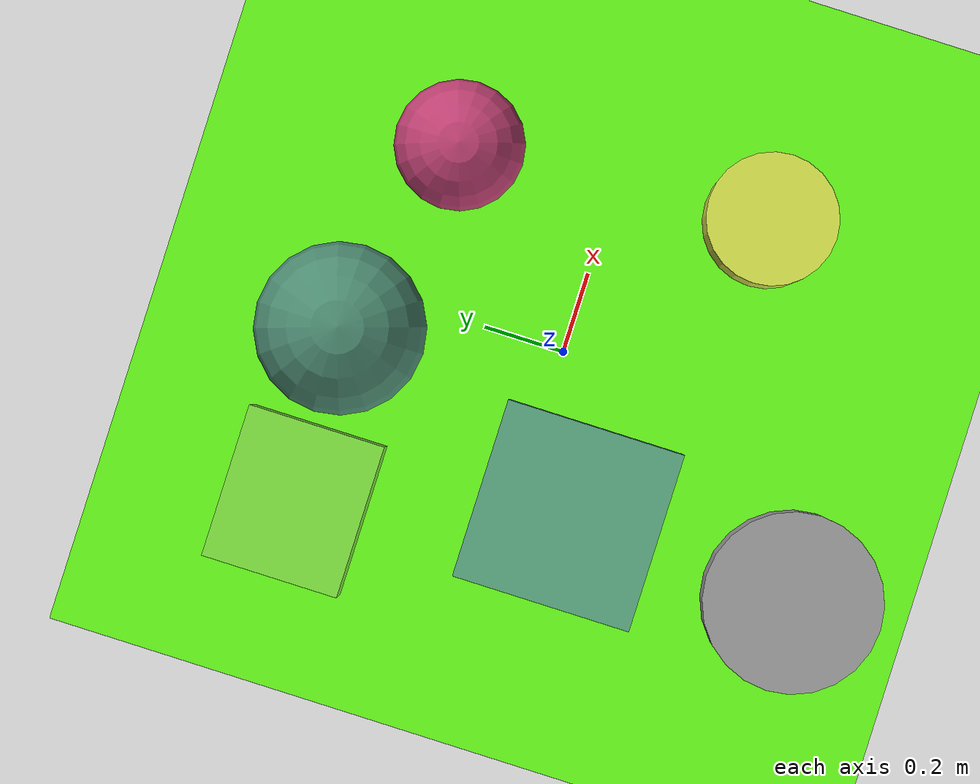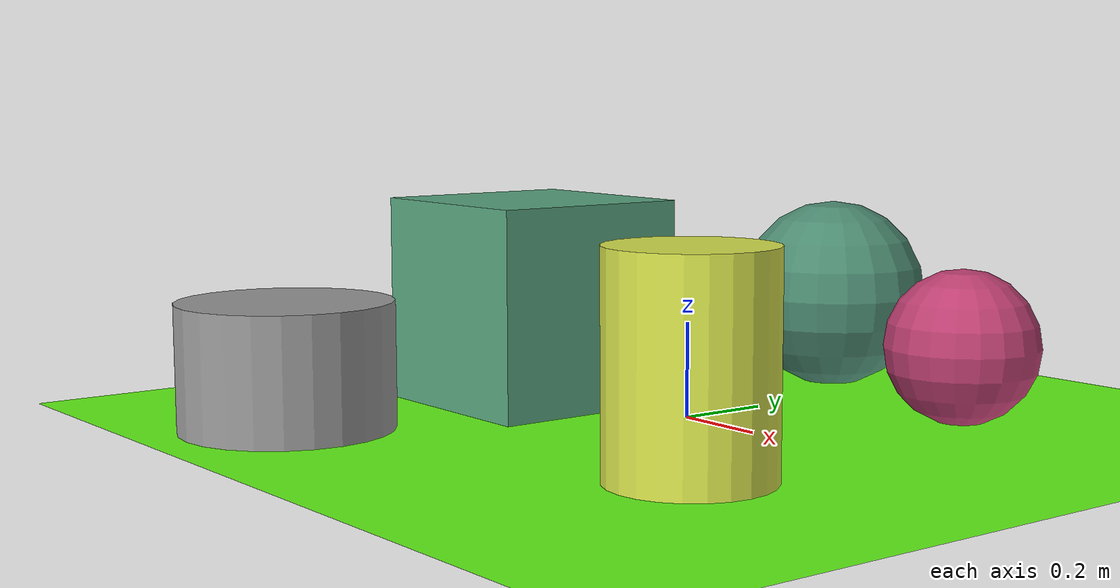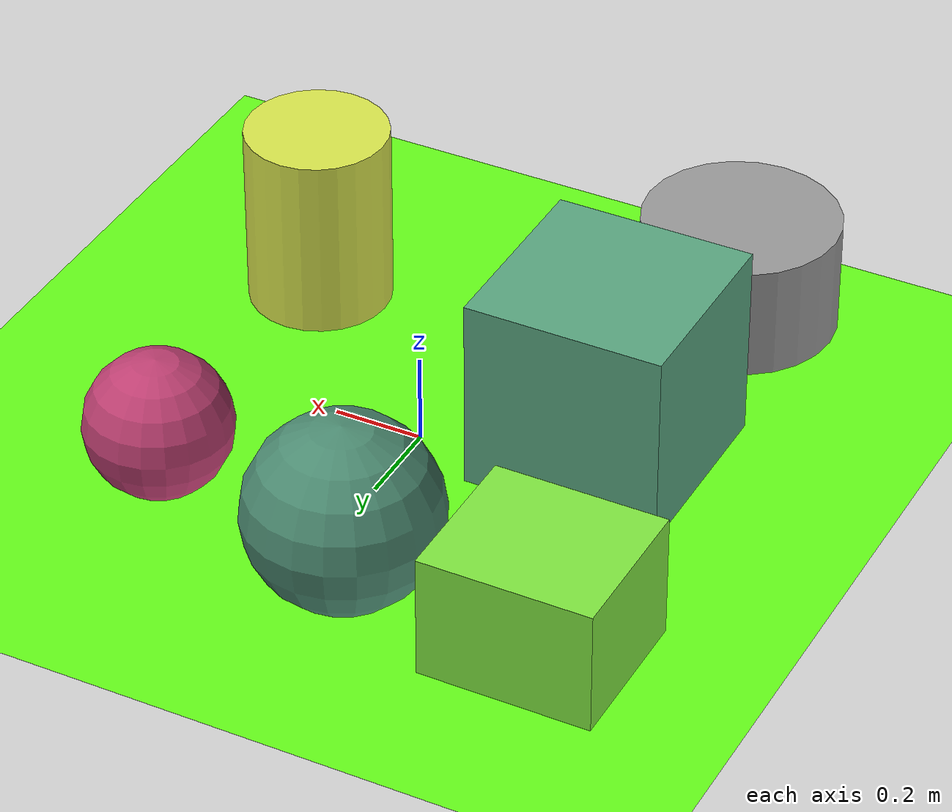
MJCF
<mujoco>
   <asset>
<texture type="skybox" builtin="gradient" rgb1="0.8 0.6 0.9" rgb2="0.3 0.8 0.8" width="256" height="256"/>
<texture name="gradient_0" builtin="gradient" rgb1="0.6 0.1 0.4" rgb2="0.9 0.4 0.5" width="200" height="200"/>
<texture name="gradient_1" builtin="gradient" rgb1="0.3 0.6 0.4" rgb2="0.9 0.6 0.8" width="200" height="200"/>
<texture name="checker_2" builtin="checker" type="2d" rgb1="0.8 0.9 0.2" rgb2="0.9 0.9 0.4" width="200" height="200"/>
<texture name="gradient_3" builtin="gradient" rgb1="0.7 0.8 0.4" rgb2="0.3 1.0 0.1" width="200" height="200"/>
<texture name="gradient_4" builtin="gradient" rgb1="0.6 0.5 0.0" rgb2="0.1 0.8 1.0" width="200" height="200"/>
<texture name="checker_5" builtin="checker" type="2d" rgb1="0.1 0.3 0.3" rgb2="0.5 0.8 0.6" width="200" height="200"/><material name="gradient_0_mat" reflectance="0" texture="gradient_0" texuniform="true"/>
<material name="gradient_1_mat" reflectance="0" texture="gradient_1" texuniform="true"/>
<material name="checker_2_mat" reflectance="0" texrepeat="2 2" texture="checker_2" texuniform="false" />
<material name="gradient_3_mat" reflectance="0" texture="gradient_3" texuniform="true"/>
<material name="gradient_4_mat" reflectance="0" texture="gradient_4" texuniform="true"/>
<material name="checker_5_mat" reflectance="0" texrepeat="2 2" texture="checker_5" texuniform="false" />
   </asset>

   <worldbody>
      <light diffuse=".9 .9 .9" pos="0 0 3" dir="0 0 -1"/>
     <geom type="plane" size="1 1 0.1" rgba="0.4 1.0 0.1 1"/>
<geom type="sphere" pos="0.4 0.39 0.16" size="0.16 0.16 0.16" material="gradient_0_mat" />
<geom type="cylinder" pos="-0.41 -0.71 0.13" size="0.22 0.13 0.13" material="gradient_1_mat" />
<geom type="cylinder" pos="0.45 -0.38 0.21" size="0.16 0.21 0.21" material="checker_2_mat" />
<geom type="box" pos="-0.54 0.51 0.14" size="0.19 0.17 0.14" material="gradient_3_mat" />
<geom type="box" pos="-0.37 -0.13 0.22" size="0.22 0.22 0.22" material="gradient_4_mat" />
<geom type="sphere" pos="-0.11 0.53 0.21" size="0.21 0.21 0.21" material="checker_5_mat" /><camera euler="60 0 180" fovy="60" name="camera_a" pos="0 -1.5 1"></camera>   </worldbody>
</mujoco>
